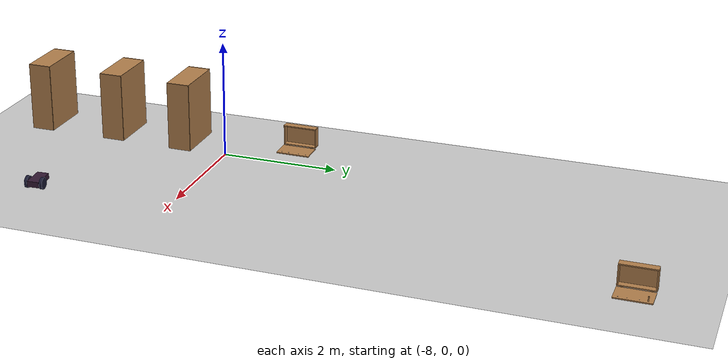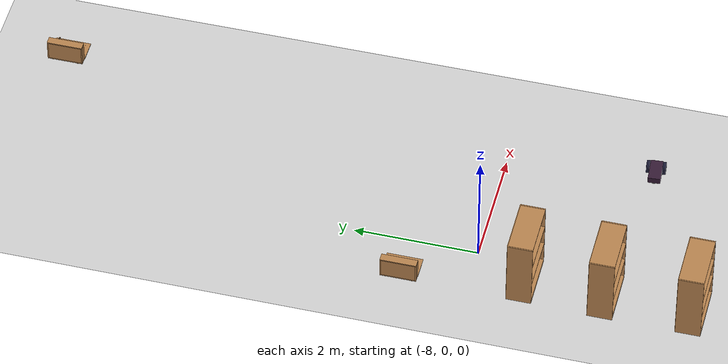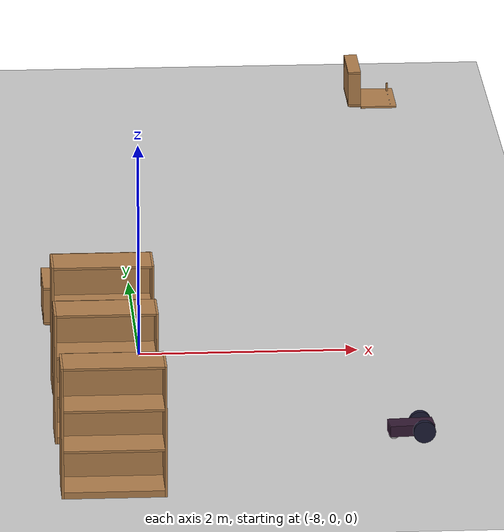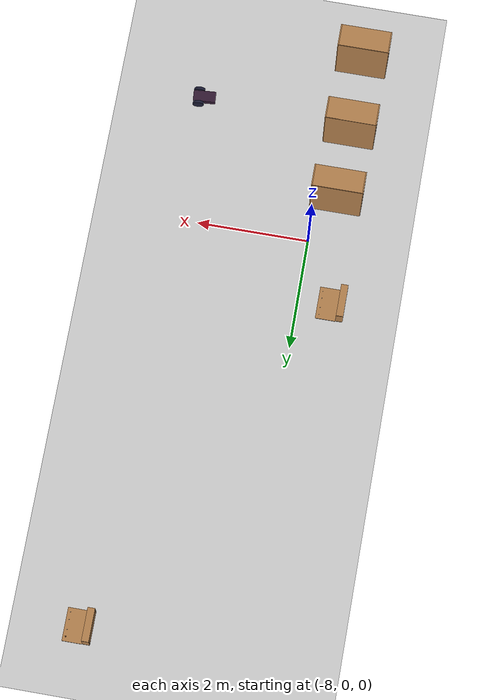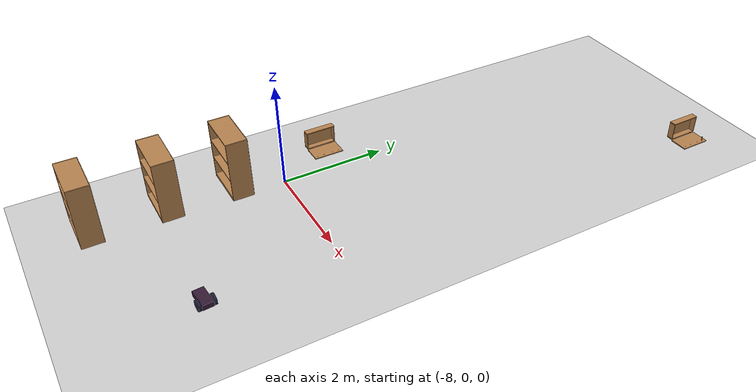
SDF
<sdf version="1.6">
 <world name="default">
  <model name="ground_plane">
   <static>1</static>
   <link name="link">
    <collision name="collision">
     <geometry><plane><normal>0 0 1</normal><size>100 100</size></plane></geometry>
     <surface><friction><ode><mu>100</mu><mu2>50</mu2></ode></friction></surface>
    </collision>
    <visual name="visual">
     <cast_shadows>0</cast_shadows>
     <geometry><plane><normal>0 0 1</normal><size>100 100</size></plane></geometry>
     <material>
      <script><uri>file://media/materials/scripts/gazebo.material</uri><name>Gazebo/Grey</name></script>
     </material>
    </visual>
   </link>
  </model>
  <model name="myMobileRobot">
   <static>0</static>
   <link name="chassis">
    <pose>0 0 0.1 0 -0 0</pose>
    <collision name="collision"><geometry><box><size>0.4 0.2 0.1</size></box></geometry></collision>
    <visual name="visual">
     <geometry><box><size>0.4 0.2 0.1</size></box></geometry>
     <material>
      <ambient>0.2 0.1 0.1 1</ambient>
      <diffuse>0.2 0.1 0.2 1</diffuse>
      <specular>0 0 0 0</specular>
      <emissive>0 0 0 1</emissive>
     </material>
    </visual>
    <collision name="caster_collision">
     <pose>-0.15 0 -0.05 0 -0 0</pose>
     <geometry><sphere><radius>0.05</radius></sphere></geometry>
     <surface><friction><ode><mu>0</mu><mu2>0</mu2><slip1>1</slip1><slip2>1</slip2></ode></friction></surface>
    </collision>
    <visual name="caster_visual">
     <pose>-0.15 0 -0.05 0 -0 0</pose>
     <geometry><sphere><radius>0.05</radius></sphere></geometry>
    </visual>
    <inertial>
     <inertia><ixx>1</ixx><ixy>0</ixy><ixz>0</ixz><iyy>1</iyy><iyz>0</iyz><izz>1</izz></inertia>
     <mass>1</mass>
    </inertial>
   </link>
   <link name="left_wheel">
    <pose>0.1 0.13 0.1 -0 1.5707 1.5707</pose>
    <collision name="collision">
     <geometry><cylinder><radius>0.1</radius><length>0.05</length></cylinder></geometry>
    </collision>
    <visual name="visual">
     <geometry><cylinder><radius>0.1</radius><length>0.05</length></cylinder></geometry>
     <material>
      <ambient>0.1 0.1 0.1 1</ambient>
      <diffuse>0.1 0.1 0.2 1</diffuse>
      <specular>0 0 0 0</specular>
      <emissive>0 0 0 1</emissive>
     </material>
    </visual>
    <inertial>
     <inertia><ixx>1</ixx><ixy>0</ixy><ixz>0</ixz><iyy>1</iyy><iyz>0</iyz><izz>1</izz></inertia>
     <mass>1</mass>
    </inertial>
   </link>
   <link name="right_wheel">
    <pose>0.1 -0.13 0.1 -0 1.5707 1.5707</pose>
    <collision name="collision">
     <geometry><cylinder><radius>0.1</radius><length>0.05</length></cylinder></geometry>
    </collision>
    <visual name="visual">
     <geometry><cylinder><radius>0.1</radius><length>0.05</length></cylinder></geometry>
     <material>
      <ambient>0.1 0.1 0.1 1</ambient>
      <diffuse>0.1 0.1 0.2 1</diffuse>
      <specular>0 0 0 0</specular>
      <emissive>0 0 0 1</emissive>
     </material>
    </visual>
    <inertial>
     <inertia><ixx>1</ixx><ixy>0</ixy><ixz>0</ixz><iyy>1</iyy><iyz>0</iyz><izz>1</izz></inertia>
     <mass>1</mass>
    </inertial>
   </link>
   <joint name="left_wheel_hinge" type="revolute">
    <pose>0 0 -0.03 0 -0 0</pose>
    <child>left_wheel</child>
    <parent>chassis</parent>
    <axis>
     <xyz>0 1 0</xyz>
     <use_parent_model_frame>1</use_parent_model_frame>
     <limit><lower>-1e+16</lower><upper>1e+16</upper></limit>
     <dynamics><spring_reference>0</spring_reference><spring_stiffness>0</spring_stiffness></dynamics>
    </axis>
   </joint>
   <joint name="right_wheel_hinge" type="revolute">
    <pose>0 0 0.03 0 -0 0</pose>
    <child>right_wheel</child>
    <parent>chassis</parent>
    <axis>
     <xyz>0 1 0</xyz>
     <use_parent_model_frame>1</use_parent_model_frame>
     <limit><lower>-1e+16</lower><upper>1e+16</upper></limit>
     <dynamics><spring_reference>0</spring_reference><spring_stiffness>0</spring_stiffness></dynamics>
    </axis>
   </joint>
   <pose>-5.70362 -2.35124 6e-06 9e-06 4.4e-05 0.075311</pose>
  </model>
  <model name="wooden_case">
   <link name="base">
    <pose>0 0 0.024 0 -0 0</pose>
    <inertial>
     <pose>-0.022184 0 0.171592 0 -0 0</pose>
     <mass>3.96264</mass>
     <inertia>
      <ixx>0.213536</ixx>
      <ixy>0</ixy>
      <ixz>0.000779377</ixz>
      <iyy>0.0708943</iyy>
      <iyz>0</iyz>
      <izz>0.154604</izz>
     </inertia>
    </inertial>
    <collision name="collision_back">
     <pose>-0.053975 0 0.1778 0 -0 0</pose>
     <geometry><box><size>0.01905 0.5461 0.3175</size></box></geometry>
     <surface>
      <contact>
       <poissons_ratio>0.347</poissons_ratio>
       <elastic_modulus>8.8e+09</elastic_modulus>
       <ode><kp>100000</kp><kd>100</kd><max_vel>100</max_vel><min_depth>0.001</min_depth></ode>
      </contact>
      <friction>
       <torsional>
        <coefficient>1</coefficient>
        <use_patch_radius>0</use_patch_radius>
        <surface_radius>0.01</surface_radius>
       </torsional>
      </friction>
     </surface>
    </collision>
    <visual name="visual_back">
     <pose>-0.053975 0 0.1778 0 -0 0</pose>
     <geometry><box><size>0.01905 0.5461 0.3175</size></box></geometry>
     <material>
      <script><uri>file://media/materials/scripts/gazebo.material</uri><name>Gazebo/Wood</name></script>
     </material>
    </visual>
    <collision name="collision_bottom">
     <pose>0 0 0.009525 0 -0 0</pose>
     <geometry><box><size>0.127 0.5842 0.01905</size></box></geometry>
     <surface>
      <contact>
       <poissons_ratio>0.347</poissons_ratio>
       <elastic_modulus>8.8e+09</elastic_modulus>
       <ode><kp>100000</kp><kd>100</kd><max_vel>100</max_vel><min_depth>0.001</min_depth></ode>
      </contact>
      <friction>
       <torsional>
        <coefficient>1</coefficient>
        <use_patch_radius>0</use_patch_radius>
        <surface_radius>0.01</surface_radius>
       </torsional>
      </friction>
     </surface>
    </collision>
    <visual name="visual_bottom">
     <pose>0 0 0.009525 0 -0 0</pose>
     <geometry><box><size>0.127 0.5842 0.01905</size></box></geometry>
     <material>
      <script><uri>file://media/materials/scripts/gazebo.material</uri><name>Gazebo/Wood</name></script>
     </material>
    </visual>
    <collision name="collision_top">
     <pose>0 0 0.346075 0 -0 0</pose>
     <geometry><box><size>0.127 0.5842 0.01905</size></box></geometry>
     <surface>
      <contact>
       <poissons_ratio>0.347</poissons_ratio>
       <elastic_modulus>8.8e+09</elastic_modulus>
       <ode><kp>100000</kp><kd>100</kd><max_vel>100</max_vel><min_depth>0.001</min_depth></ode>
      </contact>
      <friction>
       <torsional>
        <coefficient>1</coefficient>
        <use_patch_radius>0</use_patch_radius>
        <surface_radius>0.01</surface_radius>
       </torsional>
      </friction>
     </surface>
    </collision>
    <visual name="visual_top">
     <pose>0 0 0.346075 0 -0 0</pose>
     <geometry><box><size>0.127 0.5842 0.01905</size></box></geometry>
     <material>
      <script><uri>file://media/materials/scripts/gazebo.material</uri><name>Gazebo/Wood</name></script>
     </material>
    </visual>
    <collision name="collision_left">
     <pose>0 -0.282575 0.1778 0 -0 0</pose>
     <geometry><box><size>0.127 0.01905 0.3175</size></box></geometry>
     <surface>
      <contact>
       <poissons_ratio>0.347</poissons_ratio>
       <elastic_modulus>8.8e+09</elastic_modulus>
       <ode><kp>100000</kp><kd>100</kd><max_vel>100</max_vel><min_depth>0.001</min_depth></ode>
      </contact>
      <friction>
       <torsional>
        <coefficient>1</coefficient>
        <use_patch_radius>0</use_patch_radius>
        <surface_radius>0.01</surface_radius>
       </torsional>
      </friction>
     </surface>
    </collision>
    <visual name="visual_left">
     <pose>0 -0.282575 0.1778 0 -0 0</pose>
     <geometry><box><size>0.127 0.01905 0.3175</size></box></geometry>
     <material>
      <script><uri>file://media/materials/scripts/gazebo.material</uri><name>Gazebo/Wood</name></script>
     </material>
    </visual>
    <collision name="collision_right">
     <pose>0 0.282575 0.1778 0 -0 0</pose>
     <geometry><box><size>0.127 0.01905 0.3175</size></box></geometry>
     <surface>
      <contact>
       <poissons_ratio>0.347</poissons_ratio>
       <elastic_modulus>8.8e+09</elastic_modulus>
       <ode><kp>100000</kp><kd>100</kd><max_vel>100</max_vel><min_depth>0.001</min_depth></ode>
      </contact>
      <friction>
       <torsional>
        <coefficient>1</coefficient>
        <use_patch_radius>0</use_patch_radius>
        <surface_radius>0.01</surface_radius>
       </torsional>
      </friction>
     </surface>
    </collision>
    <visual name="visual_right">
     <pose>0 0.282575 0.1778 0 -0 0</pose>
     <geometry><box><size>0.127 0.01905 0.3175</size></box></geometry>
     <material>
      <script><uri>file://media/materials/scripts/gazebo.material</uri><name>Gazebo/Wood</name></script>
     </material>
    </visual>
    <collision name="collision_block_left">
     <pose>0.0095 -0.2151 -0.012 0 -0 0</pose>
     <geometry><box><size>0.108 0.05 0.024</size></box></geometry>
     <surface>
      <contact>
       <poissons_ratio>0.347</poissons_ratio>
       <elastic_modulus>8.8e+09</elastic_modulus>
       <ode><kp>100000</kp><kd>100</kd><max_vel>100</max_vel><min_depth>0.001</min_depth></ode>
      </contact>
      <friction>
       <torsional>
        <coefficient>1</coefficient>
        <use_patch_radius>0</use_patch_radius>
        <surface_radius>0.01</surface_radius>
       </torsional>
      </friction>
     </surface>
    </collision>
    <visual name="visual_block_left">
     <pose>0.0095 -0.2151 -0.012 0 -0 0</pose>
     <geometry><box><size>0.108 0.05 0.024</size></box></geometry>
     <material>
      <script><uri>file://media/materials/scripts/gazebo.material</uri><name>Gazebo/Wood</name></script>
     </material>
    </visual>
    <collision name="collision_block_right">
     <pose>0.0095 0.2151 -0.012 0 -0 0</pose>
     <geometry><box><size>0.108 0.05 0.024</size></box></geometry>
     <surface>
      <contact>
       <poissons_ratio>0.347</poissons_ratio>
       <elastic_modulus>8.8e+09</elastic_modulus>
       <ode><kp>100000</kp><kd>100</kd><max_vel>100</max_vel><min_depth>0.001</min_depth></ode>
      </contact>
      <friction>
       <torsional>
        <coefficient>1</coefficient>
        <use_patch_radius>0</use_patch_radius>
        <surface_radius>0.01</surface_radius>
       </torsional>
      </friction>
     </surface>
    </collision>
    <visual name="visual_block_right">
     <pose>0.0095 0.2151 -0.012 0 -0 0</pose>
     <geometry><box><size>0.108 0.05 0.024</size></box></geometry>
     <material>
      <script><uri>file://media/materials/scripts/gazebo.material</uri><name>Gazebo/Wood</name></script>
     </material>
    </visual>
   </link>
   <link name="lid">
    <pose>0.243775 0 0.009525 0 -0 0</pose>
    <inertial>
     <mass>1.97874</mass>
     <inertia>
      <ixx>0.0563367</ixx>
      <ixy>0</ixy>
      <ixz>0</ixz>
      <iyy>0.020911</iyy>
      <iyz>0</iyz>
      <izz>0.0771281</izz>
     </inertia>
    </inertial>
    <collision name="collision">
     <geometry><box><size>0.3556 0.5842 0.01905</size></box></geometry>
     <surface>
      <contact>
       <poissons_ratio>0.347</poissons_ratio>
       <elastic_modulus>8.8e+09</elastic_modulus>
       <ode><kp>100000</kp><kd>100</kd><max_vel>100</max_vel><min_depth>0.001</min_depth></ode>
      </contact>
      <friction>
       <torsional>
        <coefficient>1</coefficient>
        <use_patch_radius>0</use_patch_radius>
        <surface_radius>0.01</surface_radius>
       </torsional>
      </friction>
     </surface>
    </collision>
    <visual name="visual">
     <geometry><box><size>0.3556 0.5842 0.01905</size></box></geometry>
     <material>
      <script><uri>file://media/materials/scripts/gazebo.material</uri><name>Gazebo/Wood</name></script>
     </material>
    </visual>
    <visual name="tee_nut_1">
     <pose>0.122 -0.216 0 0 -0 0</pose>
     <geometry><cylinder><radius>0.00635</radius><length>0.0192405</length></cylinder></geometry>
     <material>
      <script><uri>file://media/materials/scripts/gazebo.material</uri><name>Gazebo/Grey</name></script>
     </material>
    </visual>
    <visual name="tee_nut_2">
     <pose>0.122 -0.088 0 0 -0 0</pose>
     <geometry><cylinder><radius>0.00635</radius><length>0.0192405</length></cylinder></geometry>
     <material>
      <script><uri>file://media/materials/scripts/gazebo.material</uri><name>Gazebo/Grey</name></script>
     </material>
    </visual>
    <visual name="tee_nut_3">
     <pose>0.122 0.088 0 0 -0 0</pose>
     <geometry><cylinder><radius>0.00635</radius><length>0.0192405</length></cylinder></geometry>
     <material>
      <script><uri>file://media/materials/scripts/gazebo.material</uri><name>Gazebo/Grey</name></script>
     </material>
    </visual>
    <visual name="tee_nut_4">
     <pose>0.122 0.216 0 0 -0 0</pose>
     <geometry><cylinder><radius>0.00635</radius><length>0.0192405</length></cylinder></geometry>
     <material>
      <script><uri>file://media/materials/scripts/gazebo.material</uri><name>Gazebo/Grey</name></script>
     </material>
    </visual>
   </link>
   <joint name="lid_hinge" type="revolute">
    <pose>-0.1778 0 0.01905 0 -0 0</pose>
    <parent>base</parent>
    <child>lid</child>
    <axis>
     <xyz>0 1 0</xyz>
     <limit><upper>0.523599</upper><lower>-1.5708</lower></limit>
     <use_parent_model_frame>0</use_parent_model_frame>
     <dynamics><spring_reference>0</spring_reference><spring_stiffness>0</spring_stiffness></dynamics>
    </axis>
   </joint>
   <pose>-8.77658 1.09293 0 0 -0 0</pose>
  </model>
  <model name="bookshelf_0">
   <static>1</static>
   <link name="link">
    <inertial><mass>1</mass></inertial>
    <collision name="back">
     <pose>0 0.005 0.6 0 -0 0</pose>
     <geometry><box><size>0.9 0.01 1.2</size></box></geometry>
    </collision>
    <visual name="visual1">
     <pose>0 0.005 0.6 0 -0 0</pose>
     <geometry><box><size>0.9 0.01 1.2</size></box></geometry>
     <material>
      <script><uri>file://media/materials/scripts/gazebo.material</uri><name>Gazebo/Wood</name></script>
     </material>
    </visual>
    <collision name="left_side">
     <pose>0.45 -0.195 0.6 0 -0 0</pose>
     <geometry><box><size>0.02 0.4 1.2</size></box></geometry>
    </collision>
    <visual name="visual2">
     <pose>0.45 -0.195 0.6 0 -0 0</pose>
     <geometry><box><size>0.02 0.4 1.2</size></box></geometry>
     <material>
      <script><uri>file://media/materials/scripts/gazebo.material</uri><name>Gazebo/Wood</name></script>
     </material>
    </visual>
    <collision name="right_side">
     <pose>-0.45 -0.195 0.6 0 -0 0</pose>
     <geometry><box><size>0.02 0.4 1.2</size></box></geometry>
    </collision>
    <visual name="visual3">
     <pose>-0.45 -0.195 0.6 0 -0 0</pose>
     <geometry><box><size>0.02 0.4 1.2</size></box></geometry>
     <material>
      <script><uri>file://media/materials/scripts/gazebo.material</uri><name>Gazebo/Wood</name></script>
     </material>
    </visual>
    <collision name="bottom">
     <pose>0 -0.195 0.03 0 -0 0</pose>
     <geometry><box><size>0.88 0.4 0.06</size></box></geometry>
    </collision>
    <visual name="visual4">
     <pose>0 -0.195 0.03 0 -0 0</pose>
     <geometry><box><size>0.88 0.4 0.06</size></box></geometry>
     <material>
      <script><uri>file://media/materials/scripts/gazebo.material</uri><name>Gazebo/Wood</name></script>
     </material>
    </visual>
    <collision name="top">
     <pose>0 -0.195 1.19 0 -0 0</pose>
     <geometry><box><size>0.88 0.4 0.02</size></box></geometry>
    </collision>
    <visual name="visual5">
     <pose>0 -0.195 1.19 0 -0 0</pose>
     <geometry><box><size>0.88 0.4 0.02</size></box></geometry>
     <material>
      <script><uri>file://media/materials/scripts/gazebo.material</uri><name>Gazebo/Wood</name></script>
     </material>
    </visual>
    <collision name="low_shelf">
     <pose>0 -0.195 0.43 0 -0 0</pose>
     <geometry><box><size>0.88 0.4 0.02</size></box></geometry>
    </collision>
    <visual name="visual6">
     <pose>0 -0.195 0.43 0 -0 0</pose>
     <geometry><box><size>0.88 0.4 0.02</size></box></geometry>
     <material>
      <script><uri>file://media/materials/scripts/gazebo.material</uri><name>Gazebo/Wood</name></script>
     </material>
    </visual>
    <collision name="high_shelf">
     <pose>0 -0.195 0.8 0 -0 0</pose>
     <geometry><box><size>0.88 0.4 0.02</size></box></geometry>
    </collision>
    <visual name="visual7">
     <pose>0 -0.195 0.8 0 -0 0</pose>
     <geometry><box><size>0.88 0.4 0.02</size></box></geometry>
     <material>
      <script><uri>file://media/materials/scripts/gazebo.material</uri><name>Gazebo/Wood</name></script>
     </material>
    </visual>
   </link>
   <pose>-8.37022 -0.635609 0 0 -0 0</pose>
  </model>
  <model name="bookshelf_1">
   <static>1</static>
   <link name="link">
    <inertial><mass>1</mass></inertial>
    <collision name="back">
     <pose>0 0.005 0.6 0 -0 0</pose>
     <geometry><box><size>0.9 0.01 1.2</size></box></geometry>
    </collision>
    <visual name="visual1">
     <pose>0 0.005 0.6 0 -0 0</pose>
     <geometry><box><size>0.9 0.01 1.2</size></box></geometry>
     <material>
      <script><uri>file://media/materials/scripts/gazebo.material</uri><name>Gazebo/Wood</name></script>
     </material>
    </visual>
    <collision name="left_side">
     <pose>0.45 -0.195 0.6 0 -0 0</pose>
     <geometry><box><size>0.02 0.4 1.2</size></box></geometry>
    </collision>
    <visual name="visual2">
     <pose>0.45 -0.195 0.6 0 -0 0</pose>
     <geometry><box><size>0.02 0.4 1.2</size></box></geometry>
     <material>
      <script><uri>file://media/materials/scripts/gazebo.material</uri><name>Gazebo/Wood</name></script>
     </material>
    </visual>
    <collision name="right_side">
     <pose>-0.45 -0.195 0.6 0 -0 0</pose>
     <geometry><box><size>0.02 0.4 1.2</size></box></geometry>
    </collision>
    <visual name="visual3">
     <pose>-0.45 -0.195 0.6 0 -0 0</pose>
     <geometry><box><size>0.02 0.4 1.2</size></box></geometry>
     <material>
      <script><uri>file://media/materials/scripts/gazebo.material</uri><name>Gazebo/Wood</name></script>
     </material>
    </visual>
    <collision name="bottom">
     <pose>0 -0.195 0.03 0 -0 0</pose>
     <geometry><box><size>0.88 0.4 0.06</size></box></geometry>
    </collision>
    <visual name="visual4">
     <pose>0 -0.195 0.03 0 -0 0</pose>
     <geometry><box><size>0.88 0.4 0.06</size></box></geometry>
     <material>
      <script><uri>file://media/materials/scripts/gazebo.material</uri><name>Gazebo/Wood</name></script>
     </material>
    </visual>
    <collision name="top">
     <pose>0 -0.195 1.19 0 -0 0</pose>
     <geometry><box><size>0.88 0.4 0.02</size></box></geometry>
    </collision>
    <visual name="visual5">
     <pose>0 -0.195 1.19 0 -0 0</pose>
     <geometry><box><size>0.88 0.4 0.02</size></box></geometry>
     <material>
      <script><uri>file://media/materials/scripts/gazebo.material</uri><name>Gazebo/Wood</name></script>
     </material>
    </visual>
    <collision name="low_shelf">
     <pose>0 -0.195 0.43 0 -0 0</pose>
     <geometry><box><size>0.88 0.4 0.02</size></box></geometry>
    </collision>
    <visual name="visual6">
     <pose>0 -0.195 0.43 0 -0 0</pose>
     <geometry><box><size>0.88 0.4 0.02</size></box></geometry>
     <material>
      <script><uri>file://media/materials/scripts/gazebo.material</uri><name>Gazebo/Wood</name></script>
     </material>
    </visual>
    <collision name="high_shelf">
     <pose>0 -0.195 0.8 0 -0 0</pose>
     <geometry><box><size>0.88 0.4 0.02</size></box></geometry>
    </collision>
    <visual name="visual7">
     <pose>0 -0.195 0.8 0 -0 0</pose>
     <geometry><box><size>0.88 0.4 0.02</size></box></geometry>
     <material>
      <script><uri>file://media/materials/scripts/gazebo.material</uri><name>Gazebo/Wood</name></script>
     </material>
    </visual>
   </link>
   <pose>-8.39887 -1.92718 0 0 -0 0</pose>
  </model>
  <model name="bookshelf_2">
   <static>1</static>
   <link name="link">
    <inertial><mass>1</mass></inertial>
    <collision name="back">
     <pose>0 0.005 0.6 0 -0 0</pose>
     <geometry><box><size>0.9 0.01 1.2</size></box></geometry>
    </collision>
    <visual name="visual1">
     <pose>0 0.005 0.6 0 -0 0</pose>
     <geometry><box><size>0.9 0.01 1.2</size></box></geometry>
     <material>
      <script><uri>file://media/materials/scripts/gazebo.material</uri><name>Gazebo/Wood</name></script>
     </material>
    </visual>
    <collision name="left_side">
     <pose>0.45 -0.195 0.6 0 -0 0</pose>
     <geometry><box><size>0.02 0.4 1.2</size></box></geometry>
    </collision>
    <visual name="visual2">
     <pose>0.45 -0.195 0.6 0 -0 0</pose>
     <geometry><box><size>0.02 0.4 1.2</size></box></geometry>
     <material>
      <script><uri>file://media/materials/scripts/gazebo.material</uri><name>Gazebo/Wood</name></script>
     </material>
    </visual>
    <collision name="right_side">
     <pose>-0.45 -0.195 0.6 0 -0 0</pose>
     <geometry><box><size>0.02 0.4 1.2</size></box></geometry>
    </collision>
    <visual name="visual3">
     <pose>-0.45 -0.195 0.6 0 -0 0</pose>
     <geometry><box><size>0.02 0.4 1.2</size></box></geometry>
     <material>
      <script><uri>file://media/materials/scripts/gazebo.material</uri><name>Gazebo/Wood</name></script>
     </material>
    </visual>
    <collision name="bottom">
     <pose>0 -0.195 0.03 0 -0 0</pose>
     <geometry><box><size>0.88 0.4 0.06</size></box></geometry>
    </collision>
    <visual name="visual4">
     <pose>0 -0.195 0.03 0 -0 0</pose>
     <geometry><box><size>0.88 0.4 0.06</size></box></geometry>
     <material>
      <script><uri>file://media/materials/scripts/gazebo.material</uri><name>Gazebo/Wood</name></script>
     </material>
    </visual>
    <collision name="top">
     <pose>0 -0.195 1.19 0 -0 0</pose>
     <geometry><box><size>0.88 0.4 0.02</size></box></geometry>
    </collision>
    <visual name="visual5">
     <pose>0 -0.195 1.19 0 -0 0</pose>
     <geometry><box><size>0.88 0.4 0.02</size></box></geometry>
     <material>
      <script><uri>file://media/materials/scripts/gazebo.material</uri><name>Gazebo/Wood</name></script>
     </material>
    </visual>
    <collision name="low_shelf">
     <pose>0 -0.195 0.43 0 -0 0</pose>
     <geometry><box><size>0.88 0.4 0.02</size></box></geometry>
    </collision>
    <visual name="visual6">
     <pose>0 -0.195 0.43 0 -0 0</pose>
     <geometry><box><size>0.88 0.4 0.02</size></box></geometry>
     <material>
      <script><uri>file://media/materials/scripts/gazebo.material</uri><name>Gazebo/Wood</name></script>
     </material>
    </visual>
    <collision name="high_shelf">
     <pose>0 -0.195 0.8 0 -0 0</pose>
     <geometry><box><size>0.88 0.4 0.02</size></box></geometry>
    </collision>
    <visual name="visual7">
     <pose>0 -0.195 0.8 0 -0 0</pose>
     <geometry><box><size>0.88 0.4 0.02</size></box></geometry>
     <material>
      <script><uri>file://media/materials/scripts/gazebo.material</uri><name>Gazebo/Wood</name></script>
     </material>
    </visual>
   </link>
   <pose>-8.39674 -3.31713 0 0 -0 0</pose>
  </model>
  <model name="wooden_case_wooden_peg">
   <link name="wooden_case::base">
    <pose>0 0 0.024 0 -0 0</pose>
    <inertial>
     <pose>-0.022184 0 0.171592 0 -0 0</pose>
     <mass>3.96264</mass>
     <inertia>
      <ixx>0.213536</ixx>
      <ixy>0</ixy>
      <ixz>0.000779377</ixz>
      <iyy>0.0708943</iyy>
      <iyz>0</iyz>
      <izz>0.154604</izz>
     </inertia>
    </inertial>
    <collision name="collision_back">
     <pose>-0.053975 0 0.1778 0 -0 0</pose>
     <geometry><box><size>0.01905 0.5461 0.3175</size></box></geometry>
     <surface>
      <contact>
       <poissons_ratio>0.347</poissons_ratio>
       <elastic_modulus>8.8e+09</elastic_modulus>
       <ode><kp>100000</kp><kd>100</kd><max_vel>100</max_vel><min_depth>0.001</min_depth></ode>
      </contact>
      <friction>
       <torsional>
        <coefficient>1</coefficient>
        <use_patch_radius>0</use_patch_radius>
        <surface_radius>0.01</surface_radius>
       </torsional>
      </friction>
     </surface>
    </collision>
    <visual name="visual_back">
     <pose>-0.053975 0 0.1778 0 -0 0</pose>
     <geometry><box><size>0.01905 0.5461 0.3175</size></box></geometry>
     <material>
      <script><uri>file://media/materials/scripts/gazebo.material</uri><name>Gazebo/Wood</name></script>
     </material>
    </visual>
    <collision name="collision_bottom">
     <pose>0 0 0.009525 0 -0 0</pose>
     <geometry><box><size>0.127 0.5842 0.01905</size></box></geometry>
     <surface>
      <contact>
       <poissons_ratio>0.347</poissons_ratio>
       <elastic_modulus>8.8e+09</elastic_modulus>
       <ode><kp>100000</kp><kd>100</kd><max_vel>100</max_vel><min_depth>0.001</min_depth></ode>
      </contact>
      <friction>
       <torsional>
        <coefficient>1</coefficient>
        <use_patch_radius>0</use_patch_radius>
        <surface_radius>0.01</surface_radius>
       </torsional>
      </friction>
     </surface>
    </collision>
    <visual name="visual_bottom">
     <pose>0 0 0.009525 0 -0 0</pose>
     <geometry><box><size>0.127 0.5842 0.01905</size></box></geometry>
     <material>
      <script><uri>file://media/materials/scripts/gazebo.material</uri><name>Gazebo/Wood</name></script>
     </material>
    </visual>
    <collision name="collision_top">
     <pose>0 0 0.346075 0 -0 0</pose>
     <geometry><box><size>0.127 0.5842 0.01905</size></box></geometry>
     <surface>
      <contact>
       <poissons_ratio>0.347</poissons_ratio>
       <elastic_modulus>8.8e+09</elastic_modulus>
       <ode><kp>100000</kp><kd>100</kd><max_vel>100</max_vel><min_depth>0.001</min_depth></ode>
      </contact>
      <friction>
       <torsional>
        <coefficient>1</coefficient>
        <use_patch_radius>0</use_patch_radius>
        <surface_radius>0.01</surface_radius>
       </torsional>
      </friction>
     </surface>
    </collision>
    <visual name="visual_top">
     <pose>0 0 0.346075 0 -0 0</pose>
     <geometry><box><size>0.127 0.5842 0.01905</size></box></geometry>
     <material>
      <script><uri>file://media/materials/scripts/gazebo.material</uri><name>Gazebo/Wood</name></script>
     </material>
    </visual>
    <collision name="collision_left">
     <pose>0 -0.282575 0.1778 0 -0 0</pose>
     <geometry><box><size>0.127 0.01905 0.3175</size></box></geometry>
     <surface>
      <contact>
       <poissons_ratio>0.347</poissons_ratio>
       <elastic_modulus>8.8e+09</elastic_modulus>
       <ode><kp>100000</kp><kd>100</kd><max_vel>100</max_vel><min_depth>0.001</min_depth></ode>
      </contact>
      <friction>
       <torsional>
        <coefficient>1</coefficient>
        <use_patch_radius>0</use_patch_radius>
        <surface_radius>0.01</surface_radius>
       </torsional>
      </friction>
     </surface>
    </collision>
    <visual name="visual_left">
     <pose>0 -0.282575 0.1778 0 -0 0</pose>
     <geometry><box><size>0.127 0.01905 0.3175</size></box></geometry>
     <material>
      <script><uri>file://media/materials/scripts/gazebo.material</uri><name>Gazebo/Wood</name></script>
     </material>
    </visual>
    <collision name="collision_right">
     <pose>0 0.282575 0.1778 0 -0 0</pose>
     <geometry><box><size>0.127 0.01905 0.3175</size></box></geometry>
     <surface>
      <contact>
       <poissons_ratio>0.347</poissons_ratio>
       <elastic_modulus>8.8e+09</elastic_modulus>
       <ode><kp>100000</kp><kd>100</kd><max_vel>100</max_vel><min_depth>0.001</min_depth></ode>
      </contact>
      <friction>
       <torsional>
        <coefficient>1</coefficient>
        <use_patch_radius>0</use_patch_radius>
        <surface_radius>0.01</surface_radius>
       </torsional>
      </friction>
     </surface>
    </collision>
    <visual name="visual_right">
     <pose>0 0.282575 0.1778 0 -0 0</pose>
     <geometry><box><size>0.127 0.01905 0.3175</size></box></geometry>
     <material>
      <script><uri>file://media/materials/scripts/gazebo.material</uri><name>Gazebo/Wood</name></script>
     </material>
    </visual>
    <collision name="collision_block_left">
     <pose>0.0095 -0.2151 -0.012 0 -0 0</pose>
     <geometry><box><size>0.108 0.05 0.024</size></box></geometry>
     <surface>
      <contact>
       <poissons_ratio>0.347</poissons_ratio>
       <elastic_modulus>8.8e+09</elastic_modulus>
       <ode><kp>100000</kp><kd>100</kd><max_vel>100</max_vel><min_depth>0.001</min_depth></ode>
      </contact>
      <friction>
       <torsional>
        <coefficient>1</coefficient>
        <use_patch_radius>0</use_patch_radius>
        <surface_radius>0.01</surface_radius>
       </torsional>
      </friction>
     </surface>
    </collision>
    <visual name="visual_block_left">
     <pose>0.0095 -0.2151 -0.012 0 -0 0</pose>
     <geometry><box><size>0.108 0.05 0.024</size></box></geometry>
     <material>
      <script><uri>file://media/materials/scripts/gazebo.material</uri><name>Gazebo/Wood</name></script>
     </material>
    </visual>
    <collision name="collision_block_right">
     <pose>0.0095 0.2151 -0.012 0 -0 0</pose>
     <geometry><box><size>0.108 0.05 0.024</size></box></geometry>
     <surface>
      <contact>
       <poissons_ratio>0.347</poissons_ratio>
       <elastic_modulus>8.8e+09</elastic_modulus>
       <ode><kp>100000</kp><kd>100</kd><max_vel>100</max_vel><min_depth>0.001</min_depth></ode>
      </contact>
      <friction>
       <torsional>
        <coefficient>1</coefficient>
        <use_patch_radius>0</use_patch_radius>
        <surface_radius>0.01</surface_radius>
       </torsional>
      </friction>
     </surface>
    </collision>
    <visual name="visual_block_right">
     <pose>0.0095 0.2151 -0.012 0 -0 0</pose>
     <geometry><box><size>0.108 0.05 0.024</size></box></geometry>
     <material>
      <script><uri>file://media/materials/scripts/gazebo.material</uri><name>Gazebo/Wood</name></script>
     </material>
    </visual>
   </link>
   <link name="wooden_case::lid">
    <pose>0.243775 0 0.009525 0 -0 0</pose>
    <inertial>
     <mass>1.97874</mass>
     <inertia>
      <ixx>0.0563367</ixx>
      <ixy>0</ixy>
      <ixz>0</ixz>
      <iyy>0.020911</iyy>
      <iyz>0</iyz>
      <izz>0.0771281</izz>
     </inertia>
    </inertial>
    <collision name="collision">
     <geometry><box><size>0.3556 0.5842 0.01905</size></box></geometry>
     <surface>
      <contact>
       <poissons_ratio>0.347</poissons_ratio>
       <elastic_modulus>8.8e+09</elastic_modulus>
       <ode><kp>100000</kp><kd>100</kd><max_vel>100</max_vel><min_depth>0.001</min_depth></ode>
      </contact>
      <friction>
       <torsional>
        <coefficient>1</coefficient>
        <use_patch_radius>0</use_patch_radius>
        <surface_radius>0.01</surface_radius>
       </torsional>
      </friction>
     </surface>
    </collision>
    <visual name="visual">
     <geometry><box><size>0.3556 0.5842 0.01905</size></box></geometry>
     <material>
      <script><uri>file://media/materials/scripts/gazebo.material</uri><name>Gazebo/Wood</name></script>
     </material>
    </visual>
    <visual name="tee_nut_1">
     <pose>0.122 -0.216 0 0 -0 0</pose>
     <geometry><cylinder><radius>0.00635</radius><length>0.0192405</length></cylinder></geometry>
     <material>
      <script><uri>file://media/materials/scripts/gazebo.material</uri><name>Gazebo/Grey</name></script>
     </material>
    </visual>
    <visual name="tee_nut_2">
     <pose>0.122 -0.088 0 0 -0 0</pose>
     <geometry><cylinder><radius>0.00635</radius><length>0.0192405</length></cylinder></geometry>
     <material>
      <script><uri>file://media/materials/scripts/gazebo.material</uri><name>Gazebo/Grey</name></script>
     </material>
    </visual>
    <visual name="tee_nut_3">
     <pose>0.122 0.088 0 0 -0 0</pose>
     <geometry><cylinder><radius>0.00635</radius><length>0.0192405</length></cylinder></geometry>
     <material>
      <script><uri>file://media/materials/scripts/gazebo.material</uri><name>Gazebo/Grey</name></script>
     </material>
    </visual>
    <visual name="tee_nut_4">
     <pose>0.122 0.216 0 0 -0 0</pose>
     <geometry><cylinder><radius>0.00635</radius><length>0.0192405</length></cylinder></geometry>
     <material>
      <script><uri>file://media/materials/scripts/gazebo.material</uri><name>Gazebo/Grey</name></script>
     </material>
    </visual>
   </link>
   <joint name="wooden_case::lid_hinge" type="revolute">
    <pose>-0.1778 0 0.01905 0 -0 0</pose>
    <parent>wooden_case::base</parent>
    <child>wooden_case::lid</child>
    <axis>
     <xyz>0 1 0</xyz>
     <limit><upper>0.523599</upper><lower>-1.5708</lower></limit>
     <use_parent_model_frame>0</use_parent_model_frame>
     <dynamics><spring_reference>0</spring_reference><spring_stiffness>0</spring_stiffness></dynamics>
    </axis>
   </joint>
   <link name="peg::link">
    <pose>0.365774 0.216 0.05905 0 -0 0</pose>
    <inertial>
     <mass>0.0175</mass>
     <inertia>
      <ixx>9.74923e-06</ixx>
      <ixy>0</ixy>
      <ixz>0</ixz>
      <iyy>9.74923e-06</iyy>
      <iyz>0</iyz>
      <izz>8.31797e-07</izz>
     </inertia>
    </inertial>
    <collision name="collision">
     <geometry><cylinder><radius>0.00975</radius><length>0.08</length></cylinder></geometry>
     <surface>
      <contact>
       <poissons_ratio>0.347</poissons_ratio>
       <elastic_modulus>8.8e+09</elastic_modulus>
       <ode><kp>100000</kp><kd>100</kd><max_vel>100</max_vel><min_depth>0.001</min_depth></ode>
      </contact>
      <friction>
       <torsional>
        <coefficient>1</coefficient>
        <use_patch_radius>0</use_patch_radius>
        <surface_radius>0.01</surface_radius>
       </torsional>
      </friction>
     </surface>
    </collision>
    <visual name="visual">
     <geometry><cylinder><radius>0.00975</radius><length>0.08</length></cylinder></geometry>
     <material>
      <script><uri>file://media/materials/scripts/gazebo.material</uri><name>Gazebo/Wood</name></script>
     </material>
    </visual>
   </link>
   <joint name="case_peg" type="revolute">
    <child>peg::link</child>
    <parent>wooden_case::lid</parent>
    <axis>
     <xyz>0 0 1</xyz>
     <limit><upper>0</upper><lower>0</lower></limit>
     <use_parent_model_frame>0</use_parent_model_frame>
     <dynamics><spring_reference>0</spring_reference><spring_stiffness>0</spring_stiffness></dynamics>
    </axis>
   </joint>
   <pose>-5.48339 7.47749 0 0 -0 0</pose>
  </model>
 </world>
</sdf>
